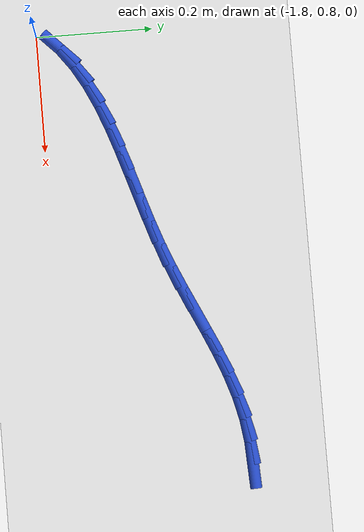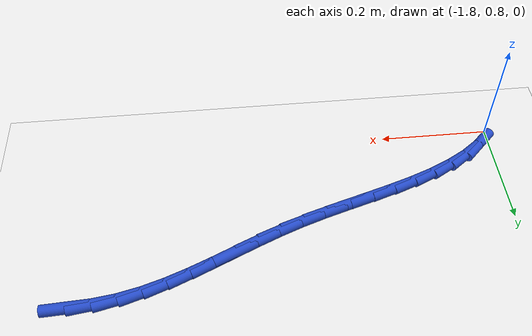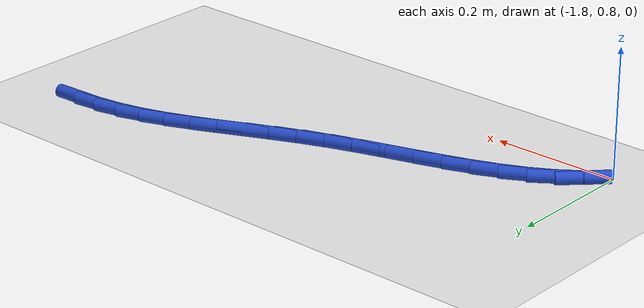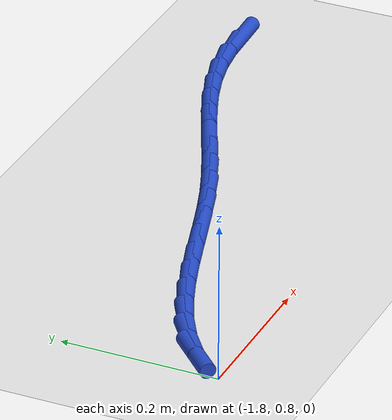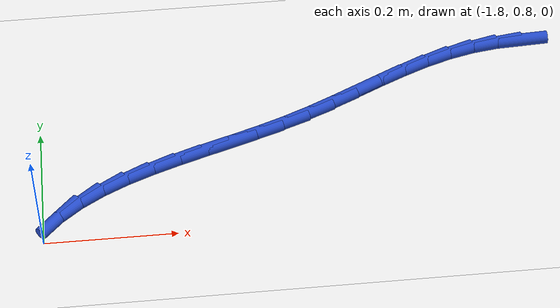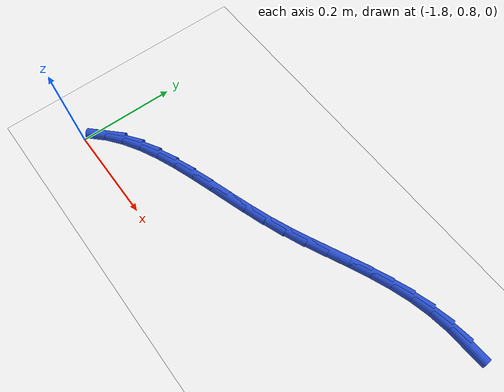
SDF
<sdf version="1.6">
 <world name="default">
  <model name="ground_plane">
   <static>1</static>
   <link name="link">
    <collision name="collision">
     <geometry><plane><normal>0 0 1</normal><size>100 100</size></plane></geometry>
     <surface><friction><ode><mu>100</mu><mu2>50</mu2></ode></friction></surface>
    </collision>
    <visual name="visual">
     <cast_shadows>0</cast_shadows>
     <geometry><plane><normal>0 0 1</normal><size>100 100</size></plane></geometry>
     <material>
      <script><uri>file://media/materials/scripts/gazebo.material</uri><name>Gazebo/WhiteGlow</name></script>
     </material>
    </visual>
   </link>
  </model>
  <model name="line">
   <link name="link_40">
    <pose>-1.037470890001634 1.1112902189784633 0.01 0 1.57 0.04652711559829884</pose>
    <collision name="collision">
     <geometry><cylinder><radius>0.01</radius><length>0.08</length></cylinder></geometry>
    </collision>
    <visual name="visual">
     <material>
      <script><name>Gazebo/Blue</name><uri>file://media/materials/scripts/gazebo.material</uri></script>
     </material>
     <geometry><cylinder><radius>0.01</radius><length>0.08</length></cylinder></geometry>
    </visual>
   </link>
   <link name="link_41">
    <pose>-1.0777419624052331 1.109415168923245 0.01 0 1.57 0.13528661117962762</pose>
    <collision name="collision">
     <geometry><cylinder><radius>0.01</radius><length>0.08</length></cylinder></geometry>
    </collision>
    <visual name="visual">
     <material>
      <script><name>Gazebo/Blue</name><uri>file://media/materials/scripts/gazebo.material</uri></script>
     </material>
     <geometry><cylinder><radius>0.01</radius><length>0.08</length></cylinder></geometry>
    </visual>
   </link>
   <link name="link_42">
    <pose>-1.1173322905224579 1.1040262103320568 0.01 0 1.57 0.23039331265800722</pose>
    <collision name="collision">
     <geometry><cylinder><radius>0.01</radius><length>0.08</length></cylinder></geometry>
    </collision>
    <visual name="visual">
     <material>
      <script><name>Gazebo/Blue</name><uri>file://media/materials/scripts/gazebo.material</uri></script>
     </material>
     <geometry><cylinder><radius>0.01</radius><length>0.08</length></cylinder></geometry>
    </visual>
   </link>
   <link name="link_43">
    <pose>-1.1561430776383477 1.0949228190211655 0.01 0 1.57 0.3124875136861646</pose>
    <collision name="collision">
     <geometry><cylinder><radius>0.01</radius><length>0.08</length></cylinder></geometry>
    </collision>
    <visual name="visual">
     <material>
      <script><name>Gazebo/Blue</name><uri>file://media/materials/scripts/gazebo.material</uri></script>
     </material>
     <geometry><cylinder><radius>0.01</radius><length>0.08</length></cylinder></geometry>
    </visual>
   </link>
   <link name="link_44">
    <pose>-1.1943443769005473 1.082581031495295 0.01 0 1.57 0.37325666811087105</pose>
    <collision name="collision">
     <geometry><cylinder><radius>0.01</radius><length>0.08</length></cylinder></geometry>
    </collision>
    <visual name="visual">
     <material>
      <script><name>Gazebo/Blue</name><uri>file://media/materials/scripts/gazebo.material</uri></script>
     </material>
     <geometry><cylinder><radius>0.01</radius><length>0.08</length></cylinder></geometry>
    </visual>
   </link>
   <link name="link_45">
    <pose>-1.232214921234384 1.067750376923432 0.01 0 1.57 0.41293162421717494</pose>
    <collision name="collision">
     <geometry><cylinder><radius>0.01</radius><length>0.08</length></cylinder></geometry>
    </collision>
    <visual name="visual">
     <material>
      <script><name>Gazebo/Blue</name><uri>file://media/materials/scripts/gazebo.material</uri></script>
     </material>
     <geometry><cylinder><radius>0.01</radius><length>0.08</length></cylinder></geometry>
    </visual>
   </link>
   <link name="link_46">
    <pose>-1.270033748351906 1.0511811514703508 0.01 0 1.57 0.43235879861497617</pose>
    <collision name="collision">
     <geometry><cylinder><radius>0.01</radius><length>0.08</length></cylinder></geometry>
    </collision>
    <visual name="visual">
     <material>
      <script><name>Gazebo/Blue</name><uri>file://media/materials/scripts/gazebo.material</uri></script>
     </material>
     <geometry><cylinder><radius>0.01</radius><length>0.08</length></cylinder></geometry>
    </visual>
   </link>
   <link name="link_47">
    <pose>-1.3080798959651592 1.033623651300827 0.01 0 1.57 0.4324508518343912</pose>
    <collision name="collision">
     <geometry><cylinder><radius>0.01</radius><length>0.08</length></cylinder></geometry>
    </collision>
    <visual name="visual">
     <material>
      <script><name>Gazebo/Blue</name><uri>file://media/materials/scripts/gazebo.material</uri></script>
     </material>
     <geometry><cylinder><radius>0.01</radius><length>0.08</length></cylinder></geometry>
    </visual>
   </link>
   <link name="link_48">
    <pose>-1.3466324017861915 1.0158281725796348 0.01 0 1.57 0.4139633232318281</pose>
    <collision name="collision">
     <geometry><cylinder><radius>0.01</radius><length>0.08</length></cylinder></geometry>
    </collision>
    <visual name="visual">
     <material>
      <script><name>Gazebo/Blue</name><uri>file://media/materials/scripts/gazebo.material</uri></script>
     </material>
     <geometry><cylinder><radius>0.01</radius><length>0.08</length></cylinder></geometry>
    </visual>
   </link>
   <link name="link_49">
    <pose>-1.3859703035270494 0.9985450114715495 0.01 0 1.57 0.3776107500835675</pose>
    <collision name="collision">
     <geometry><cylinder><radius>0.01</radius><length>0.08</length></cylinder></geometry>
    </collision>
    <visual name="visual">
     <material>
      <script><name>Gazebo/Blue</name><uri>file://media/materials/scripts/gazebo.material</uri></script>
     </material>
     <geometry><cylinder><radius>0.01</radius><length>0.08</length></cylinder></geometry>
    </visual>
   </link>
   <link name="link_50">
    <pose>-1.4263702786159698 0.9825205654023055 0.01 0 1.57 0.33534078591751243</pose>
    <collision name="collision">
     <geometry><cylinder><radius>0.01</radius><length>0.08</length></cylinder></geometry>
    </collision>
    <visual name="visual">
     <material>
      <script><name>Gazebo/Blue</name><uri>file://media/materials/scripts/gazebo.material</uri></script>
     </material>
     <geometry><cylinder><radius>0.01</radius><length>0.08</length></cylinder></geometry>
    </visual>
   </link>
   <link name="link_51">
    <pose>-1.467845671740134 0.9680662562944938 0.01 0 1.57 0.30836272072563947</pose>
    <collision name="collision">
     <geometry><cylinder><radius>0.01</radius><length>0.08</length></cylinder></geometry>
    </collision>
    <visual name="visual">
     <material>
      <script><name>Gazebo/Blue</name><uri>file://media/materials/scripts/gazebo.material</uri></script>
     </material>
     <geometry><cylinder><radius>0.01</radius><length>0.08</length></cylinder></geometry>
    </visual>
   </link>
   <link name="link_52">
    <pose>-1.509909952785031 0.9546678081627891 0.01 0 1.57 0.29832438738879186</pose>
    <collision name="collision">
     <geometry><cylinder><radius>0.01</radius><length>0.08</length></cylinder></geometry>
    </collision>
    <visual name="visual">
     <material>
      <script><name>Gazebo/Blue</name><uri>file://media/materials/scripts/gazebo.material</uri></script>
     </material>
     <geometry><cylinder><radius>0.01</radius><length>0.08</length></cylinder></geometry>
    </visual>
   </link>
   <link name="link_53">
    <pose>-1.5520207398676904 0.9417186885444131 0.01 0 1.57 0.3051089379654529</pose>
    <collision name="collision">
     <geometry><cylinder><radius>0.01</radius><length>0.08</length></cylinder></geometry>
    </collision>
    <visual name="visual">
     <material>
      <script><name>Gazebo/Blue</name><uri>file://media/materials/scripts/gazebo.material</uri></script>
     </material>
     <geometry><cylinder><radius>0.01</radius><length>0.08</length></cylinder></geometry>
    </visual>
   </link>
   <link name="link_54">
    <pose>-1.593635651105139 0.9286123649765872 0.01 0 1.57 0.32937228199061636</pose>
    <collision name="collision">
     <geometry><cylinder><radius>0.01</radius><length>0.08</length></cylinder></geometry>
    </collision>
    <visual name="visual">
     <material>
      <script><name>Gazebo/Blue</name><uri>file://media/materials/scripts/gazebo.material</uri></script>
     </material>
     <geometry><cylinder><radius>0.01</radius><length>0.08</length></cylinder></geometry>
    </visual>
   </link>
   <link name="link_55">
    <pose>-1.6342123046144061 0.9147423049965333 0.01 0 1.57 0.3725655445291035</pose>
    <collision name="collision">
     <geometry><cylinder><radius>0.01</radius><length>0.08</length></cylinder></geometry>
    </collision>
    <visual name="visual">
     <material>
      <script><name>Gazebo/Blue</name><uri>file://media/materials/scripts/gazebo.material</uri></script>
     </material>
     <geometry><cylinder><radius>0.01</radius><length>0.08</length></cylinder></geometry>
    </visual>
   </link>
   <link name="link_56">
    <pose>-1.67320831851252 0.8995019761414726 0.01 0 1.57 0.43684390989538824</pose>
    <collision name="collision">
     <geometry><cylinder><radius>0.01</radius><length>0.08</length></cylinder></geometry>
    </collision>
    <visual name="visual">
     <material>
      <script><name>Gazebo/Blue</name><uri>file://media/materials/scripts/gazebo.material</uri></script>
     </material>
     <geometry><cylinder><radius>0.01</radius><length>0.08</length></cylinder></geometry>
    </visual>
   </link>
   <link name="link_57">
    <pose>-1.7100813109165087 0.8822848459486273 0.01 0 1.57 0.5247097290324274</pose>
    <collision name="collision">
     <geometry><cylinder><radius>0.01</radius><length>0.08</length></cylinder></geometry>
    </collision>
    <visual name="visual">
     <material>
      <script><name>Gazebo/Blue</name><uri>file://media/materials/scripts/gazebo.material</uri></script>
     </material>
     <geometry><cylinder><radius>0.01</radius><length>0.08</length></cylinder></geometry>
    </visual>
   </link>
   <link name="link_58">
    <pose>-1.7442888999434014 0.8624843819552186 0.01 0 1.57 0.6381216241457354</pose>
    <collision name="collision">
     <geometry><cylinder><radius>0.01</radius><length>0.08</length></cylinder></geometry>
    </collision>
    <visual name="visual">
     <material>
      <script><name>Gazebo/Blue</name><uri>file://media/materials/scripts/gazebo.material</uri></script>
     </material>
     <geometry><cylinder><radius>0.01</radius><length>0.08</length></cylinder></geometry>
    </visual>
   </link>
   <link name="link_59">
    <pose>-1.7752887037102258 0.8394940516984681 0.01 0 1.57 0.7767245210007024</pose>
    <collision name="collision">
     <geometry><cylinder><radius>0.01</radius><length>0.08</length></cylinder></geometry>
    </collision>
    <visual name="visual">
     <material>
      <script><name>Gazebo/Blue</name><uri>file://media/materials/scripts/gazebo.material</uri></script>
     </material>
     <geometry><cylinder><radius>0.01</radius><length>0.08</length></cylinder></geometry>
    </visual>
   </link>
  </model>
 </world>
</sdf>
